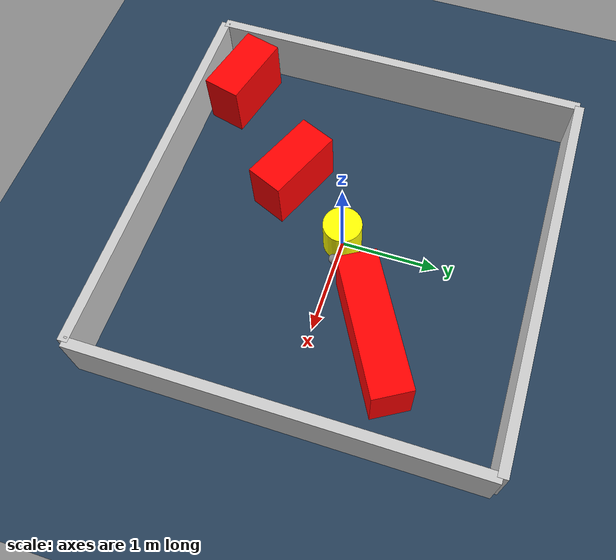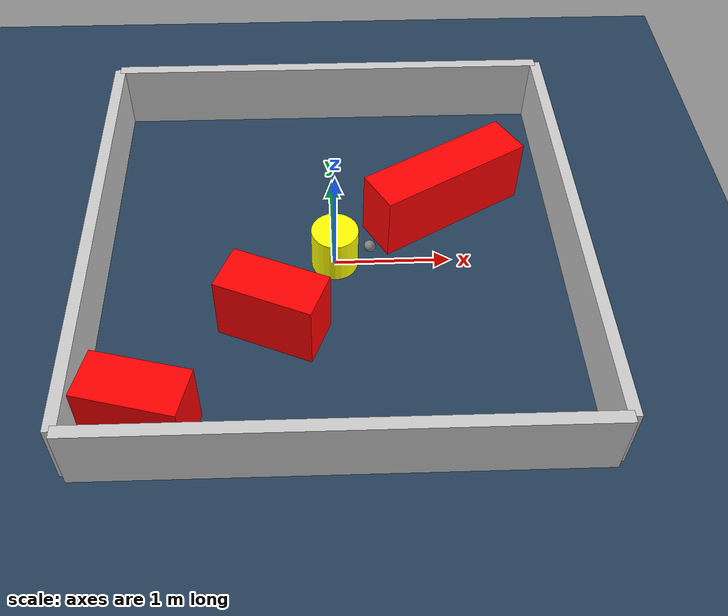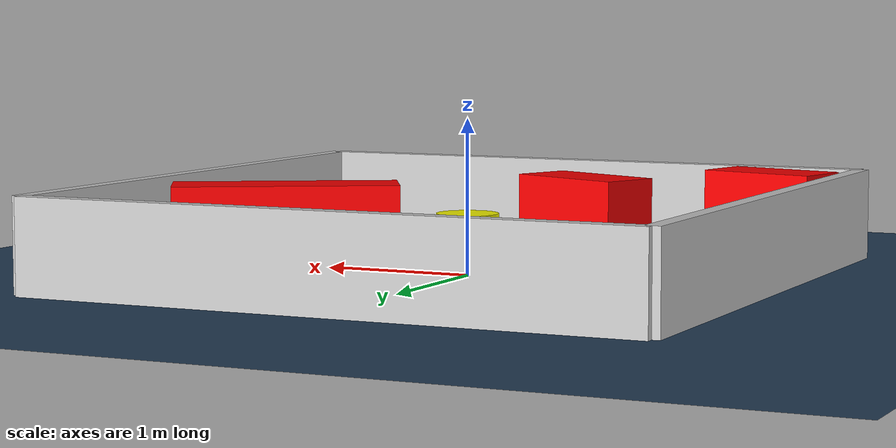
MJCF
<?xml version="1.0" ?>
<mujoco model="generated_environment">
  <option timestep="0.01" integrator="RK4" cone="elliptic"/>
  <default>
    <geom density="1"/>
  </default>
  <asset>
    <texture builtin="gradient" height="3072" rgb1="0.3 0.5 0.7" rgb2="0 0 0" type="skybox" width="512"/>
    <texture builtin="checker" height="300" mark="edge" markrgb="0.8 0.8 0.8" name="groundplane" rgb1="0.2 0.3 0.4" rgb2="0.1 0.2 0.3" type="2d" width="300"/>
    <material name="groundplane" reflectance="0.2" texrepeat="5 5" texture="groundplane" texuniform="true"/>
    <material name="robot" rgba="0.0 1.0 0.0 1"/>
  </asset>
  <worldbody>
    <light dir="0 0 -1" directional="true" pos="0 0 1.5"/>
    <geom condim="4" friction="1.0 0.005 0.001" material="groundplane" name="floor" size="0 0 0.05" type="plane"/>
    <body name="walls">
      <geom name="wall_1" condim="4" pos="-2.0 0.0 0.3" rgba="0.800000011920929 0.800000011920929 0.800000011920929 1.0" size="0.05 2.0 0.3" type="box"/>
      <geom name="wall_2" condim="4" pos="2.0 0.0 0.3" rgba="0.800000011920929 0.800000011920929 0.800000011920929 1.0" size="0.05 2.0 0.3" type="box"/>
      <geom name="wall_3" condim="4" pos="0.0 -2.0 0.3" rgba="0.800000011920929 0.800000011920929 0.800000011920929 1.0" size="2.0 0.05 0.3" type="box"/>
      <geom name="wall_4" condim="4" pos="0.0 2.0 0.3" rgba="0.800000011920929 0.800000011920929 0.800000011920929 1.0" size="2.0 0.05 0.3" type="box"/>
    </body>
    <body name="robot">
      <joint name="joint_x" type="slide" pos="0 0 0" axis="1 0 0"/>
      <joint name="joint_y" type="slide" pos="0 0 0" axis="0 1 0"/>
      <geom name="robot" type="sphere" pos="0.3 0.0 0.2" size="0.05" mass="5." friction="1.0 0.005 0.0001" condim="4" rgba="0.5 0.5 0.5 1.0"/>
      <site name="sensor_ball"/>
    </body>
    <body name="obstacle_movable_1">
      <geom name="obstacle_movable_1" condim="4" pos="0.0 0.0 0.2" euler="0 0 0.0" friction="1.0 0.005 0.001" rgba="1.0 1.0 0.0 1.0" size="0.2 0.2 0.0" type="cylinder" mass="0.1"/>
      <joint type="free"/>
    </body>
    <body name="obstacle_2_static">
      <geom name="obstacle_2_static" condim="4" pos="-1.4894858450406279 -1.6144801590760731 0.3" euler="0 0 165.7046964303061" friction="1.0 0.005 0.001" rgba="1 0 0 1" size="0.39831187194767537 0.2 0.3" type="box"/>
    </body>
    <body name="obstacle_3_static">
      <geom name="obstacle_3_static" condim="4" pos="0.979134916648585 0.6042060888605059 0.3" euler="0 0 29.84226453562842" friction="1.0 0.005 0.001" rgba="1 0 0 1" size="0.7099255450017561 0.2 0.3" type="box"/>
    </body>
    <body name="obstacle_4_static">
      <geom name="obstacle_4_static" condim="4" pos="-0.5139879582171003 -0.7069625830027886 0.3" euler="0 0 336.89875290633495" friction="1.0 0.005 0.001" rgba="1 0 0 1" size="0.4126735741807873 0.2 0.3" type="box"/>
    </body>
  </worldbody>
  <actuator>
    <motor name="actuator_x" joint="joint_x" gear="1" ctrlrange="-1 1"/>
    <motor name="actuator_y" joint="joint_y" gear="1" ctrlrange="-1 1"/>
  </actuator>
</mujoco>
